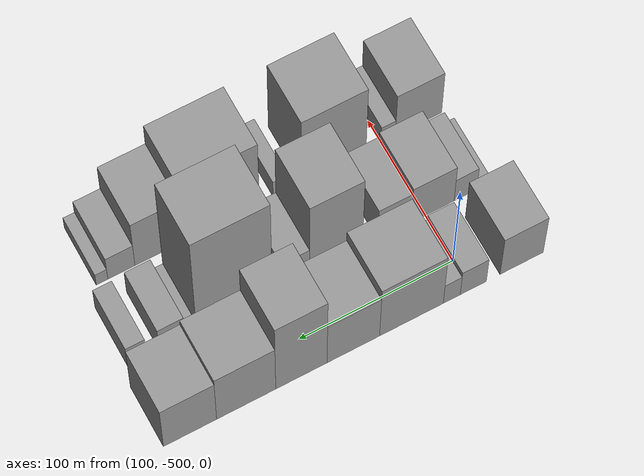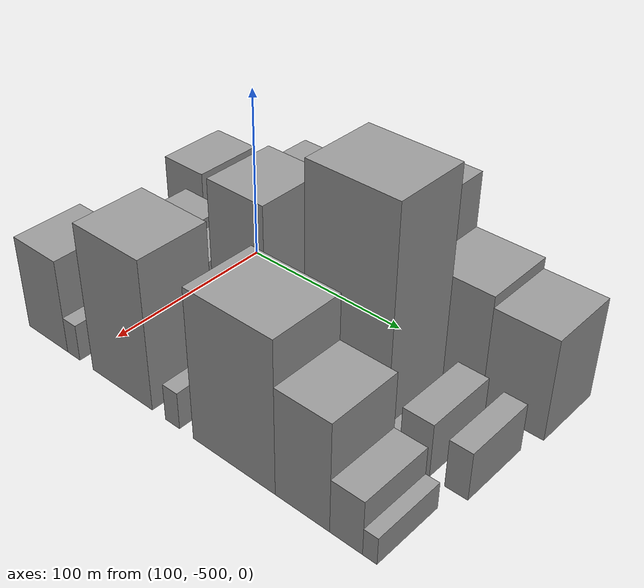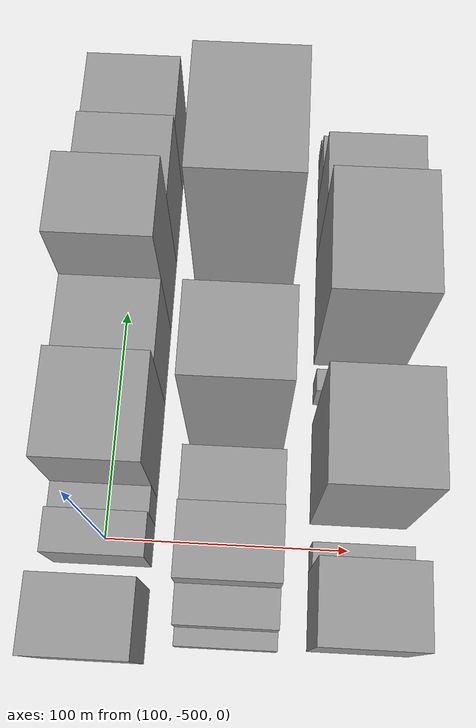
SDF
<sdf version="1.6">
 <world name="default">
  <model name="building_1">
   <static>1</static>
   <pose>100.0000 -533.7878 0 0.000000 0.000000 0.000000</pose>
   <link name="link">
    <pose>0 0 25.50 0 0 0</pose>
    <collision name="collision"><geometry><box><size>40.0000 28.4243 51.0000</size></box></geometry></collision>
    <visual name="visual">
     <cast_shadows>0</cast_shadows>
     <geometry><box><size>40.0000 28.4243 51.0000</size></box></geometry>
     <material>
      <script>
       <uri>model://grey_wall/materials/scripts</uri>
       <uri>model://grey_wall/materials/textures</uri>
       <name>vrc/grey_wall</name>
      </script>
     </material>
    </visual>
   </link>
  </model>
  <model name="building_2">
   <static>1</static>
   <pose>100.0000 -502.0530 0 0.000000 0.000000 0.000000</pose>
   <link name="link">
    <pose>0 0 16.50 0 0 0</pose>
    <collision name="collision"><geometry><box><size>40.0000 17.0454 33.0000</size></box></geometry></collision>
    <visual name="visual">
     <cast_shadows>0</cast_shadows>
     <geometry><box><size>40.0000 17.0454 33.0000</size></box></geometry>
     <material>
      <script>
       <uri>model://grey_wall/materials/scripts</uri>
       <uri>model://grey_wall/materials/textures</uri>
       <name>vrc/grey_wall</name>
      </script>
     </material>
    </visual>
   </link>
  </model>
  <model name="building_3">
   <static>1</static>
   <pose>100.0000 -487.9994 0 0.000000 0.000000 0.000000</pose>
   <link name="link">
    <pose>0 0 13.50 0 0 0</pose>
    <collision name="collision"><geometry><box><size>40.0000 11.0617 27.0000</size></box></geometry></collision>
    <visual name="visual">
     <cast_shadows>0</cast_shadows>
     <geometry><box><size>40.0000 11.0617 27.0000</size></box></geometry>
     <material>
      <script>
       <uri>model://grey_wall/materials/scripts</uri>
       <uri>model://grey_wall/materials/textures</uri>
       <name>vrc/grey_wall</name>
      </script>
     </material>
    </visual>
   </link>
  </model>
  <model name="building_4">
   <static>1</static>
   <pose>100.0000 -461.7784 0 0.000000 0.000000 0.000000</pose>
   <link name="link">
    <pose>0 0 34.50 0 0 0</pose>
    <collision name="collision"><geometry><box><size>40.0000 41.3804 69.0000</size></box></geometry></collision>
    <visual name="visual">
     <cast_shadows>0</cast_shadows>
     <geometry><box><size>40.0000 41.3804 69.0000</size></box></geometry>
     <material>
      <script>
       <uri>model://grey_wall/materials/scripts</uri>
       <uri>model://grey_wall/materials/textures</uri>
       <name>vrc/grey_wall</name>
      </script>
     </material>
    </visual>
   </link>
  </model>
  <model name="building_5">
   <static>1</static>
   <pose>100.0000 -424.1361 0 0.000000 0.000000 0.000000</pose>
   <link name="link">
    <pose>0 0 28.50 0 0 0</pose>
    <collision name="collision"><geometry><box><size>40.0000 33.9042 57.0000</size></box></geometry></collision>
    <visual name="visual">
     <cast_shadows>0</cast_shadows>
     <geometry><box><size>40.0000 33.9042 57.0000</size></box></geometry>
     <material>
      <script>
       <uri>model://grey_wall/materials/scripts</uri>
       <uri>model://grey_wall/materials/textures</uri>
       <name>vrc/grey_wall</name>
      </script>
     </material>
    </visual>
   </link>
  </model>
  <model name="building_6">
   <static>1</static>
   <pose>100.0000 -390.7886 0 0.000000 0.000000 0.000000</pose>
   <link name="link">
    <pose>0 0 46.50 0 0 0</pose>
    <collision name="collision"><geometry><box><size>40.0000 32.7908 93.0000</size></box></geometry></collision>
    <visual name="visual">
     <cast_shadows>0</cast_shadows>
     <geometry><box><size>40.0000 32.7908 93.0000</size></box></geometry>
     <material>
      <script>
       <uri>model://grey_wall/materials/scripts</uri>
       <uri>model://grey_wall/materials/textures</uri>
       <name>vrc/grey_wall</name>
      </script>
     </material>
    </visual>
   </link>
  </model>
  <model name="building_7">
   <static>1</static>
   <pose>100.0000 -355.5904 0 0.000000 0.000000 0.000000</pose>
   <link name="link">
    <pose>0 0 31.50 0 0 0</pose>
    <collision name="collision"><geometry><box><size>40.0000 37.6057 63.0000</size></box></geometry></collision>
    <visual name="visual">
     <cast_shadows>0</cast_shadows>
     <geometry><box><size>40.0000 37.6057 63.0000</size></box></geometry>
     <material>
      <script>
       <uri>model://grey_wall/materials/scripts</uri>
       <uri>model://grey_wall/materials/textures</uri>
       <name>vrc/grey_wall</name>
      </script>
     </material>
    </visual>
   </link>
  </model>
  <model name="building_8">
   <static>1</static>
   <pose>100.0000 -319.9944 0 0.000000 0.000000 0.000000</pose>
   <link name="link">
    <pose>0 0 28.50 0 0 0</pose>
    <collision name="collision"><geometry><box><size>40.0000 33.5863 57.0000</size></box></geometry></collision>
    <visual name="visual">
     <cast_shadows>0</cast_shadows>
     <geometry><box><size>40.0000 33.5863 57.0000</size></box></geometry>
     <material>
      <script>
       <uri>model://grey_wall/materials/scripts</uri>
       <uri>model://grey_wall/materials/textures</uri>
       <name>vrc/grey_wall</name>
      </script>
     </material>
    </visual>
   </link>
  </model>
  <model name="building_36">
   <static>1</static>
   <pose>152.0000 -537.5006 0 0.000000 0.000000 0.000000</pose>
   <link name="link">
    <pose>0 0 7.50 0 0 0</pose>
    <collision name="collision"><geometry><box><size>40.0000 6.9989 15.0000</size></box></geometry></collision>
    <visual name="visual">
     <cast_shadows>0</cast_shadows>
     <geometry><box><size>40.0000 6.9989 15.0000</size></box></geometry>
     <material>
      <script>
       <uri>model://grey_wall/materials/scripts</uri>
       <uri>model://grey_wall/materials/textures</uri>
       <name>vrc/grey_wall</name>
      </script>
     </material>
    </visual>
   </link>
  </model>
  <model name="building_37">
   <static>1</static>
   <pose>152.0000 -526.4591 0 0.000000 0.000000 0.000000</pose>
   <link name="link">
    <pose>0 0 15.00 0 0 0</pose>
    <collision name="collision"><geometry><box><size>40.0000 15.0840 30.0000</size></box></geometry></collision>
    <visual name="visual">
     <cast_shadows>0</cast_shadows>
     <geometry><box><size>40.0000 15.0840 30.0000</size></box></geometry>
     <material>
      <script>
       <uri>model://grey_wall/materials/scripts</uri>
       <uri>model://grey_wall/materials/textures</uri>
       <name>vrc/grey_wall</name>
      </script>
     </material>
    </visual>
   </link>
  </model>
  <model name="building_38">
   <static>1</static>
   <pose>152.0000 -504.8679 0 0.000000 0.000000 0.000000</pose>
   <link name="link">
    <pose>0 0 24.00 0 0 0</pose>
    <collision name="collision"><geometry><box><size>40.0000 28.0985 48.0000</size></box></geometry></collision>
    <visual name="visual">
     <cast_shadows>0</cast_shadows>
     <geometry><box><size>40.0000 28.0985 48.0000</size></box></geometry>
     <material>
      <script>
       <uri>model://grey_wall/materials/scripts</uri>
       <uri>model://grey_wall/materials/textures</uri>
       <name>vrc/grey_wall</name>
      </script>
     </material>
    </visual>
   </link>
  </model>
  <model name="building_39">
   <static>1</static>
   <pose>152.0000 -479.7542 0 0.000000 0.000000 0.000000</pose>
   <link name="link">
    <pose>0 0 21.00 0 0 0</pose>
    <collision name="collision"><geometry><box><size>40.0000 22.1289 42.0000</size></box></geometry></collision>
    <visual name="visual">
     <cast_shadows>0</cast_shadows>
     <geometry><box><size>40.0000 22.1289 42.0000</size></box></geometry>
     <material>
      <script>
       <uri>model://grey_wall/materials/scripts</uri>
       <uri>model://grey_wall/materials/textures</uri>
       <name>vrc/grey_wall</name>
      </script>
     </material>
    </visual>
   </link>
  </model>
  <model name="building_40">
   <static>1</static>
   <pose>152.0000 -441.5042 0 0.000000 0.000000 0.000000</pose>
   <link name="link">
    <pose>0 0 48.00 0 0 0</pose>
    <collision name="collision"><geometry><box><size>40.0000 34.3711 96.0000</size></box></geometry></collision>
    <visual name="visual">
     <cast_shadows>0</cast_shadows>
     <geometry><box><size>40.0000 34.3711 96.0000</size></box></geometry>
     <material>
      <script>
       <uri>model://grey_wall/materials/scripts</uri>
       <uri>model://grey_wall/materials/textures</uri>
       <name>vrc/grey_wall</name>
      </script>
     </material>
    </visual>
   </link>
  </model>
  <model name="building_41">
   <static>1</static>
   <pose>152.0000 -415.2745 0 0.000000 0.000000 0.000000</pose>
   <link name="link">
    <pose>0 0 18.00 0 0 0</pose>
    <collision name="collision"><geometry><box><size>40.0000 18.0883 36.0000</size></box></geometry></collision>
    <visual name="visual">
     <cast_shadows>0</cast_shadows>
     <geometry><box><size>40.0000 18.0883 36.0000</size></box></geometry>
     <material>
      <script>
       <uri>model://grey_wall/materials/scripts</uri>
       <uri>model://grey_wall/materials/textures</uri>
       <name>vrc/grey_wall</name>
      </script>
     </material>
    </visual>
   </link>
  </model>
  <model name="building_42">
   <static>1</static>
   <pose>152.0000 -375.8528 0 0.000000 0.000000 0.000000</pose>
   <link name="link">
    <pose>0 0 64.50 0 0 0</pose>
    <collision name="collision"><geometry><box><size>40.0000 48.7551 129.0000</size></box></geometry></collision>
    <visual name="visual">
     <cast_shadows>0</cast_shadows>
     <geometry><box><size>40.0000 48.7551 129.0000</size></box></geometry>
     <material>
      <script>
       <uri>model://grey_wall/materials/scripts</uri>
       <uri>model://grey_wall/materials/textures</uri>
       <name>vrc/grey_wall</name>
      </script>
     </material>
    </visual>
   </link>
  </model>
  <model name="building_43">
   <static>1</static>
   <pose>152.0000 -347.8266 0 0.000000 0.000000 0.000000</pose>
   <link name="link">
    <pose>0 0 7.50 0 0 0</pose>
    <collision name="collision"><geometry><box><size>40.0000 7.2974 15.0000</size></box></geometry></collision>
    <visual name="visual">
     <cast_shadows>0</cast_shadows>
     <geometry><box><size>40.0000 7.2974 15.0000</size></box></geometry>
     <material>
      <script>
       <uri>model://grey_wall/materials/scripts</uri>
       <uri>model://grey_wall/materials/textures</uri>
       <name>vrc/grey_wall</name>
      </script>
     </material>
    </visual>
   </link>
  </model>
  <model name="building_44">
   <static>1</static>
   <pose>152.0000 -335.9141 0 0.000000 0.000000 0.000000</pose>
   <link name="link">
    <pose>0 0 15.00 0 0 0</pose>
    <collision name="collision"><geometry><box><size>40.0000 16.5275 30.0000</size></box></geometry></collision>
    <visual name="visual">
     <cast_shadows>0</cast_shadows>
     <geometry><box><size>40.0000 16.5275 30.0000</size></box></geometry>
     <material>
      <script>
       <uri>model://grey_wall/materials/scripts</uri>
       <uri>model://grey_wall/materials/textures</uri>
       <name>vrc/grey_wall</name>
      </script>
     </material>
    </visual>
   </link>
  </model>
  <model name="building_45">
   <static>1</static>
   <pose>152.0000 -313.5962 0 0.000000 0.000000 0.000000</pose>
   <link name="link">
    <pose>0 0 13.50 0 0 0</pose>
    <collision name="collision"><geometry><box><size>40.0000 12.1083 27.0000</size></box></geometry></collision>
    <visual name="visual">
     <cast_shadows>0</cast_shadows>
     <geometry><box><size>40.0000 12.1083 27.0000</size></box></geometry>
     <material>
      <script>
       <uri>model://grey_wall/materials/scripts</uri>
       <uri>model://grey_wall/materials/textures</uri>
       <name>vrc/grey_wall</name>
      </script>
     </material>
    </visual>
   </link>
  </model>
  <model name="building_70">
   <static>1</static>
   <pose>204.0000 -524.5877 0 0.000000 0.000000 0.000000</pose>
   <link name="link">
    <pose>0 0 27.00 0 0 0</pose>
    <collision name="collision"><geometry><box><size>40.0000 30.8247 54.0000</size></box></geometry></collision>
    <visual name="visual">
     <cast_shadows>0</cast_shadows>
     <geometry><box><size>40.0000 30.8247 54.0000</size></box></geometry>
     <material>
      <script>
       <uri>model://grey_wall/materials/scripts</uri>
       <uri>model://grey_wall/materials/textures</uri>
       <name>vrc/grey_wall</name>
      </script>
     </material>
    </visual>
   </link>
  </model>
  <model name="building_71">
   <static>1</static>
   <pose>204.0000 -504.4820 0 0.000000 0.000000 0.000000</pose>
   <link name="link">
    <pose>0 0 10.50 0 0 0</pose>
    <collision name="collision"><geometry><box><size>40.0000 9.3867 21.0000</size></box></geometry></collision>
    <visual name="visual">
     <cast_shadows>0</cast_shadows>
     <geometry><box><size>40.0000 9.3867 21.0000</size></box></geometry>
     <material>
      <script>
       <uri>model://grey_wall/materials/scripts</uri>
       <uri>model://grey_wall/materials/textures</uri>
       <name>vrc/grey_wall</name>
      </script>
     </material>
    </visual>
   </link>
  </model>
  <model name="building_72">
   <static>1</static>
   <pose>204.0000 -468.4687 0 0.000000 0.000000 0.000000</pose>
   <link name="link">
    <pose>0 0 42.00 0 0 0</pose>
    <collision name="collision"><geometry><box><size>40.0000 42.6400 84.0000</size></box></geometry></collision>
    <visual name="visual">
     <cast_shadows>0</cast_shadows>
     <geometry><box><size>40.0000 42.6400 84.0000</size></box></geometry>
     <material>
      <script>
       <uri>model://grey_wall/materials/scripts</uri>
       <uri>model://grey_wall/materials/textures</uri>
       <name>vrc/grey_wall</name>
      </script>
     </material>
    </visual>
   </link>
  </model>
  <model name="building_73">
   <static>1</static>
   <pose>204.0000 -433.4450 0 0.000000 0.000000 0.000000</pose>
   <link name="link">
    <pose>0 0 10.50 0 0 0</pose>
    <collision name="collision"><geometry><box><size>40.0000 9.4074 21.0000</size></box></geometry></collision>
    <visual name="visual">
     <cast_shadows>0</cast_shadows>
     <geometry><box><size>40.0000 9.4074 21.0000</size></box></geometry>
     <material>
      <script>
       <uri>model://grey_wall/materials/scripts</uri>
       <uri>model://grey_wall/materials/textures</uri>
       <name>vrc/grey_wall</name>
      </script>
     </material>
    </visual>
   </link>
  </model>
  <model name="building_74">
   <static>1</static>
   <pose>204.0000 -394.6522 0 0.000000 0.000000 0.000000</pose>
   <link name="link">
    <pose>0 0 42.00 0 0 0</pose>
    <collision name="collision"><geometry><box><size>40.0000 50.1781 84.0000</size></box></geometry></collision>
    <visual name="visual">
     <cast_shadows>0</cast_shadows>
     <geometry><box><size>40.0000 50.1781 84.0000</size></box></geometry>
     <material>
      <script>
       <uri>model://grey_wall/materials/scripts</uri>
       <uri>model://grey_wall/materials/textures</uri>
       <name>vrc/grey_wall</name>
      </script>
     </material>
    </visual>
   </link>
  </model>
  <model name="building_75">
   <static>1</static>
   <pose>204.0000 -354.3937 0 0.000000 0.000000 0.000000</pose>
   <link name="link">
    <pose>0 0 30.00 0 0 0</pose>
    <collision name="collision"><geometry><box><size>40.0000 30.3391 60.0000</size></box></geometry></collision>
    <visual name="visual">
     <cast_shadows>0</cast_shadows>
     <geometry><box><size>40.0000 30.3391 60.0000</size></box></geometry>
     <material>
      <script>
       <uri>model://grey_wall/materials/scripts</uri>
       <uri>model://grey_wall/materials/textures</uri>
       <name>vrc/grey_wall</name>
      </script>
     </material>
    </visual>
   </link>
  </model>
  <model name="building_76">
   <static>1</static>
   <pose>204.0000 -330.5365 0 0.000000 0.000000 0.000000</pose>
   <link name="link">
    <pose>0 0 15.00 0 0 0</pose>
    <collision name="collision"><geometry><box><size>40.0000 17.3753 30.0000</size></box></geometry></collision>
    <visual name="visual">
     <cast_shadows>0</cast_shadows>
     <geometry><box><size>40.0000 17.3753 30.0000</size></box></geometry>
     <material>
      <script>
       <uri>model://grey_wall/materials/scripts</uri>
       <uri>model://grey_wall/materials/textures</uri>
       <name>vrc/grey_wall</name>
      </script>
     </material>
    </visual>
   </link>
  </model>
  <model name="building_77">
   <static>1</static>
   <pose>204.0000 -318.1378 0 0.000000 0.000000 0.000000</pose>
   <link name="link">
    <pose>0 0 7.50 0 0 0</pose>
    <collision name="collision"><geometry><box><size>40.0000 7.4220 15.0000</size></box></geometry></collision>
    <visual name="visual">
     <cast_shadows>0</cast_shadows>
     <geometry><box><size>40.0000 7.4220 15.0000</size></box></geometry>
     <material>
      <script>
       <uri>model://grey_wall/materials/scripts</uri>
       <uri>model://grey_wall/materials/textures</uri>
       <name>vrc/grey_wall</name>
      </script>
     </material>
    </visual>
   </link>
  </model>
 </world>
</sdf>
